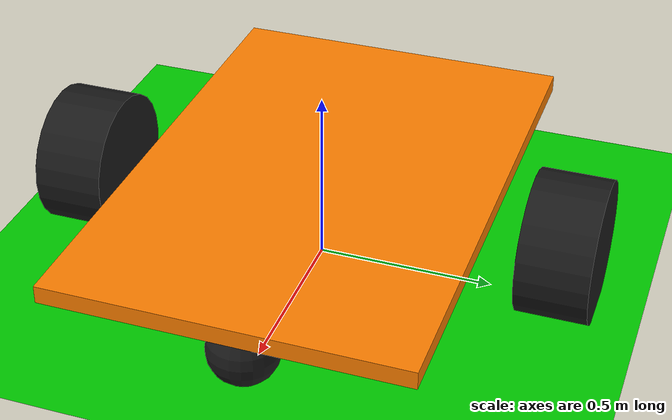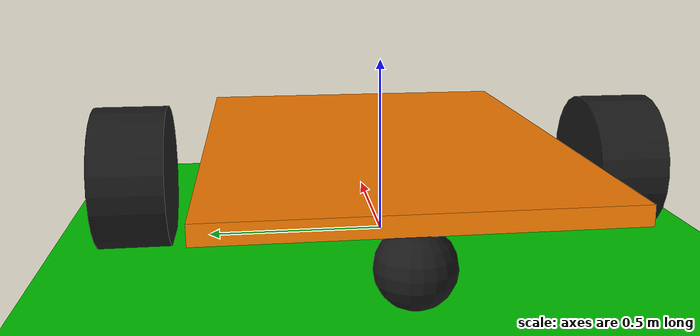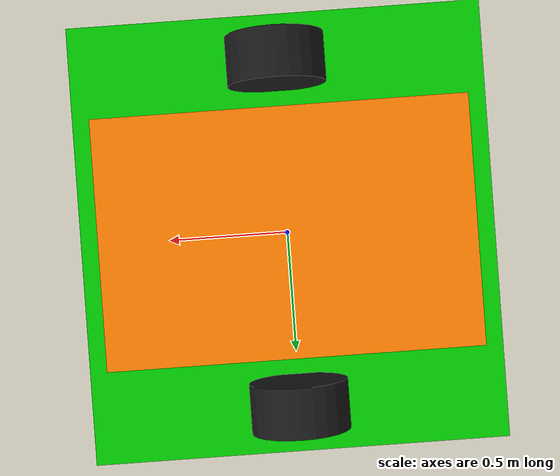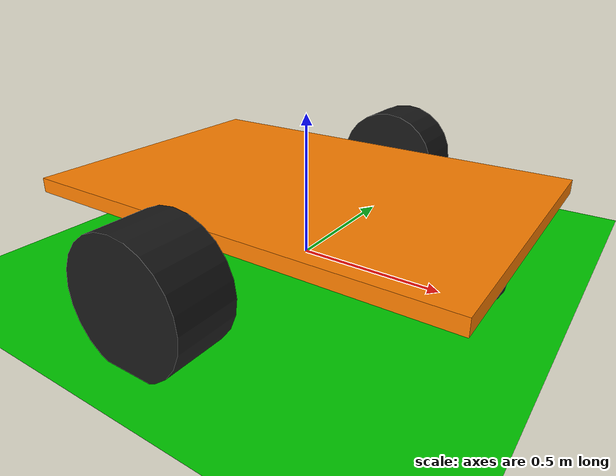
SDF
<?xml version="1.0" ?>
<sdf version="1.7">
  <world name="default">
    <gravity>0 0 -9.8</gravity>

    <!-- Suelo con colisión del .obj -->
    <model name="ground_plane">
      <static>true</static>
      <link name="link">

        <collision name="collision">
          <geometry>
            <plane>
              <normal>0 0 1</normal>
              <size>100 100</size>
            </plane>
          </geometry>
	<surface>
  		<friction>
    		<ode>
      	<mu>5.0</mu>
      	<mu2>5.0</mu2>
    	</ode>
  	</friction>
	</surface>
        </collision>

        <visual name="visual">
          <geometry>
            <plane>
              <normal>0 0 1</normal>
              <size>100 100</size>
            </plane>
          </geometry>

          <material>
            <ambient>0 0.8 0 1</ambient>
            <diffuse>0 0.8 0 1</diffuse>
          </material>

        </visual>

      </link>
    </model>

    <!-- Bolitabot -->
    <include>
      <uri>model://bolitabot_casters.sdf</uri>
      <pose>0 0 0.0 0 0 0</pose>
    </include>

  </world>
</sdf>

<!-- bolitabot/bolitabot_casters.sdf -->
<sdf version="1.7">
  <model name="bolitabot">
    <pose>0 0 0 0 0 0</pose>
    <static>false</static>

    <!-- Chasis -->
    <link name="chassis">
      <pose>0 0 0.25 0 0 0</pose>
      <inertial>
        <mass>5.0</mass>
        <inertia>
          <ixx>0.1</ixx><iyy>0.1</iyy><izz>0.1</izz>
        </inertia>
      </inertial>
      <visual name="visual">
        <geometry>
          <box><size>1.5 1.0 0.05</size></box>
        </geometry>
        <material>
          <ambient>1 0.5 0 1</ambient>
          <diffuse>1 0.5 0 1</diffuse>
        </material>
      </visual>
      <collision name="collision">
        <geometry>
          <box><size>1.5 1.0 0.1</size></box>
        </geometry>
      </collision>
    </link>

    <!-- Rueda derecha -->
    <link name="right_wheel">
      <pose>0 0.7 0.18 1.57 0 0</pose>
      <inertial>
        <mass>0.5</mass>
        <inertia>
          <ixx>0.01</ixx><iyy>0.01</iyy><izz>0.01</izz>
        </inertia>
      </inertial>
      <collision name="collision">
        <geometry>
          <cylinder><radius>0.2</radius><length>0.2</length></cylinder>
        </geometry>
        <surface>
          <friction>
            <ode><mu>5.0</mu><mu2>5.0</mu2></ode>
          </friction>
        </surface>
      </collision>
      <visual name="visual">
        <geometry>
          <cylinder><radius>0.2</radius><length>0.2</length></cylinder>
        </geometry>
        <material>
          <ambient>0.1 0.1 0.1 1</ambient>
          <diffuse>0.1 0.1 0.1 1</diffuse>
        </material>
      </visual>
    </link>

    <!-- Rueda izquierda -->
    <link name="left_wheel">
      <pose>0 -0.7 0.18 1.57 0 0</pose>
      <inertial>
        <mass>0.5</mass>
        <inertia>
          <ixx>0.01</ixx><iyy>0.01</iyy><izz>0.01</izz>
        </inertia>
      </inertial>
      <collision name="collision">
        <geometry>
          <cylinder><radius>0.2</radius><length>0.2</length></cylinder>
        </geometry>
        <surface>
          <friction>
            <ode><mu>5.0</mu><mu2>5.0</mu2></ode>
          </friction>
        </surface>
      </collision>
      <visual name="visual">
        <geometry>
          <cylinder><radius>0.2</radius><length>0.2</length></cylinder>
        </geometry>
        <material>
          <ambient>0.1 0.1 0.1 1</ambient>
          <diffuse>0.1 0.1 0.1 1</diffuse>
        </material>
      </visual>
    </link>

    <!-- Caster TRASERO -->
    <link name="caster_rear">
      <pose>0.6 0 0.1 0 0 0</pose>
      <inertial>
        <mass>0.1</mass>
        <inertia>
          <ixx>0.001</ixx><iyy>0.001</iyy><izz>0.001</izz>
        </inertia>
      </inertial>
      <collision name="collision">
        <geometry>
          <sphere><radius>0.1</radius></sphere>
        </geometry>
      </collision>
      <visual name="visual">
        <geometry>
          <sphere><radius>0.1</radius></sphere>
        </geometry>
        <material>
          <ambient>0.1 0.1 0.1 1</ambient>
          <diffuse>0.1 0.1 0.1 1</diffuse>
        </material>
      </visual>
    </link>

    <!-- Caster DELANTERO -->
    <link name="caster_front">
      <pose>-0.6 0 0.1 0 0 0</pose>
      <inertial>
        <mass>0.1</mass>
        <inertia>
          <ixx>0.001</ixx><iyy>0.001</iyy><izz>0.001</izz>
        </inertia>
      </inertial>
      <collision name="collision">
        <geometry>
          <sphere><radius>0.1</radius></sphere>
        </geometry>
      </collision>
      <visual name="visual">
        <geometry>
          <sphere><radius>0.1</radius></sphere>
        </geometry>
        <material>
          <ambient>0.1 0.1 0.1 1</ambient>
          <diffuse>0.1 0.1 0.1 1</diffuse>
        </material>
      </visual>
    </link>

    <!-- Joints ruedas -->
    <joint name="left_wheel_joint" type="revolute">
      <parent>chassis</parent>
      <child>left_wheel</child>
      <axis>
        <xyz>0 0 1</xyz>
        <dynamics><damping>0.2</damping><friction>0.2</friction></dynamics>
      </axis>
    </joint>

    <joint name="right_wheel_joint" type="revolute">
      <parent>chassis</parent>
      <child>right_wheel</child>
      <axis>
        <xyz>0 0 1</xyz>
        <dynamics><damping>0.2</damping><friction>0.2</friction></dynamics>
      </axis>
    </joint>

    <!-- Joints casters (ball para rotar libre) -->
    <joint name="caster_rear_joint" type="ball">
      <parent>chassis</parent>
      <child>caster_rear</child>
    </joint>

    <joint name="caster_front_joint" type="ball">
      <parent>chassis</parent>
      <child>caster_front</child>
    </joint>

    <!-- Plugin DiffDrive -->
    <plugin
      filename="gz-sim-diff-drive-system"
      name="gz::sim::systems::DiffDrive">
      <left_joint>left_wheel_joint</left_joint>
      <right_joint>right_wheel_joint</right_joint>
      <wheel_separation>1.4</wheel_separation>
      <wheel_radius>0.2</wheel_radius>
      <topic>/model/bolitabot/cmd_vel</topic>
      <odom_topic>/model/bolitabot/odometry</odom_topic>
      <tf_topic>/model/bolitabot/tf</tf_topic>
    </plugin>

  </model>
</sdf>
